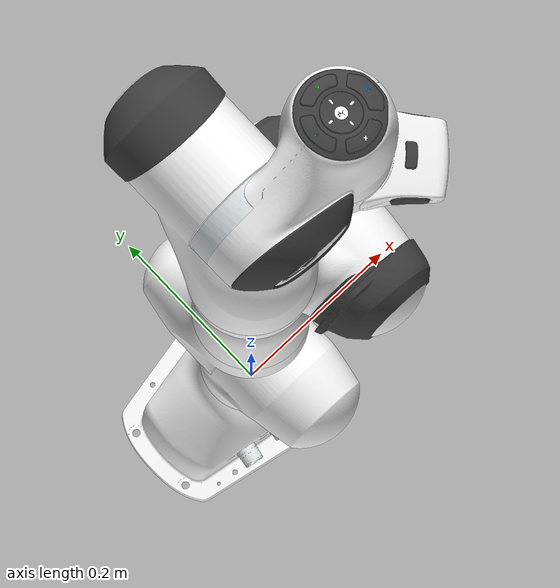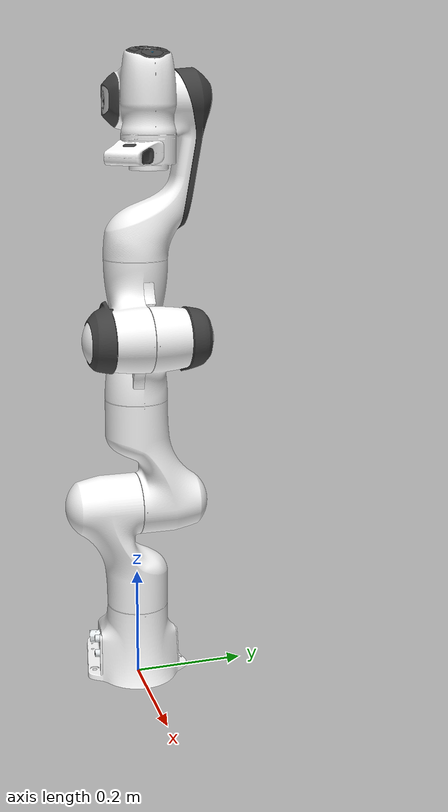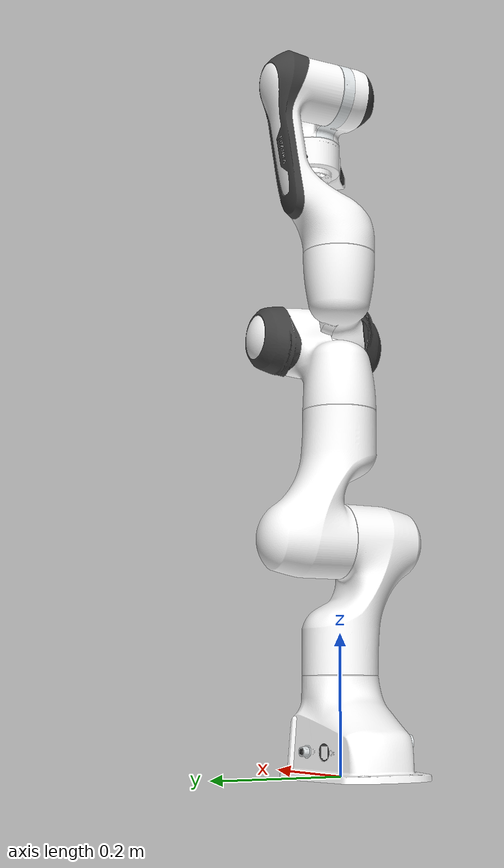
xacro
<?xml version="1.0" encoding="utf-8"?>
<robot xmlns:xacro="http://www.ros.org/wiki/xacro" name="panda">

  <xacro:include filename="$(find franka_hardware)/ros2_control/franka_arm.ros2_control.xacro"/>

  <xacro:arg name="arm_id" default="panda"/>
  <xacro:arg name="hand" default="false"/>
  <xacro:arg name="tcp_xyz" default="0 0 0.1034"/>
  <xacro:arg name="tcp_rpy" default="0 0 0"/>

  <xacro:arg name="gazebo" default="false"/>
  <xacro:arg name="parent" default="world"/>
  <xacro:arg name="xyz" default="0 0 0"/>
  <xacro:arg name="rpy" default="0 0 0"/>

  <xacro:arg name="include_ros2_control" default="false"/>
  <xacro:arg name="robot_ip" default=""/>
  <xacro:arg name="use_fake_hardware" default="false"/>
  <xacro:arg name="fake_sensor_commands" default="false"/>
  <xacro:arg name="gazebo_effort" default="false"/>
  <xacro:arg name="is_async" default="false"/>
  <xacro:arg name="thread_priority" default="50"/>
  <xacro:arg name="initial_joint1" default="0.0"/>
  <xacro:arg name="initial_joint2" default="0.0"/>
  <xacro:arg name="initial_joint3" default="0.0"/>
  <xacro:arg name="initial_joint4" default="${-pi/2}"/>
  <xacro:arg name="initial_joint5" default="0.0"/>
  <xacro:arg name="initial_joint6" default="${pi/2}"/>
  <xacro:arg name="initial_joint7" default="${-pi/4}"/>

  <xacro:property name="arm_id" value="$(arg arm_id)"/>
  <xacro:property name="mesh_pkg" value="package://franka_emika_panda/assets"/>
  <xacro:property name="joint_limits" value="${xacro.load_yaml('$(find franka_emika_panda)/joint_limits.yaml')}"/>

  <material name="panda_white">
    <color rgba="1 1 1 1"/>
  </material>
  <material name="panda_off_white">
    <color rgba="0.901961 0.921569 0.929412 1"/>
  </material>
  <material name="panda_black">
    <color rgba="0.25 0.25 0.25 1"/>
  </material>
  <material name="panda_green">
    <color rgba="0 1 0 1"/>
  </material>
  <material name="panda_light_blue">
    <color rgba="0.039216 0.541176 0.780392 1"/>
  </material>

  <xacro:macro name="mesh_visual" params="mesh material:=panda_white">
    <visual>
      <geometry>
        <mesh filename="${mesh_pkg}/${mesh}"/>
      </geometry>
      <material name="${material}"/>
    </visual>
  </xacro:macro>

  <xacro:macro name="mesh_collision" params="mesh">
    <collision>
      <geometry>
        <mesh filename="${mesh_pkg}/${mesh}"/>
      </geometry>
    </collision>
  </xacro:macro>

  <xacro:macro name="box_collision" params="xyz size">
    <collision>
      <origin xyz="${xyz}"/>
      <geometry>
        <box size="${size}"/>
      </geometry>
    </collision>
  </xacro:macro>

  <xacro:macro name="revolute_joint" params="name parent child xyz rpy">
    <joint name="${arm_id}_${name}" type="revolute">
      <origin xyz="${xyz}" rpy="${rpy}"/>
      <parent link="${arm_id}_${parent}"/>
      <child link="${arm_id}_${child}"/>
      <axis xyz="0 0 1"/>
      <limit
        lower="${joint_limits[name]['limit']['lower']}"
        upper="${joint_limits[name]['limit']['upper']}"
        effort="${joint_limits[name]['limit']['effort']}"
        velocity="${joint_limits[name]['limit']['velocity']}"/>
      <dynamics damping="1.0"/>
    </joint>
  </xacro:macro>

  <xacro:if value="$(arg gazebo)">
    <xacro:unless value="${'$(arg parent)' == ''}">
      <link name="$(arg parent)"/>
      <joint name="${arm_id}_base_joint" type="fixed">
        <origin xyz="$(arg xyz)" rpy="$(arg rpy)"/>
        <parent link="$(arg parent)"/>
        <child link="${arm_id}_link0"/>
      </joint>
    </xacro:unless>
  </xacro:if>

  <link name="${arm_id}_link0">
    <inertial>
      <origin xyz="-0.041018 -0.00014 0.049974"/>
      <mass value="0.629769"/>
      <inertia ixx="0.00315" iyy="0.00388" izz="0.004285" ixy="8.2904e-7" ixz="0.00015" iyz="8.2299e-6"/>
    </inertial>
    <xacro:mesh_visual mesh="link0_0.obj" material="panda_off_white"/>
    <xacro:mesh_visual mesh="link0_1.obj" material="panda_black"/>
    <xacro:mesh_visual mesh="link0_2.obj" material="panda_off_white"/>
    <xacro:mesh_visual mesh="link0_3.obj" material="panda_black"/>
    <xacro:mesh_visual mesh="link0_4.obj" material="panda_off_white"/>
    <xacro:mesh_visual mesh="link0_5.obj" material="panda_black"/>
    <xacro:mesh_visual mesh="link0_7.obj"/>
    <xacro:mesh_visual mesh="link0_8.obj"/>
    <xacro:mesh_visual mesh="link0_9.obj" material="panda_black"/>
    <xacro:mesh_visual mesh="link0_10.obj" material="panda_off_white"/>
    <xacro:mesh_visual mesh="link0_11.obj"/>
  </link>

  <link name="${arm_id}_link1">
    <inertial>
      <origin xyz="0.003875 0.002081 -0.04762"/>
      <mass value="4.970684"/>
      <inertia ixx="0.70337" iyy="0.70661" izz="0.009117" ixy="-0.000139" ixz="0.006772" iyz="0.019169"/>
    </inertial>
    <xacro:mesh_visual mesh="link1.obj"/>
  </link>
  <xacro:revolute_joint name="joint1" parent="link0" child="link1" xyz="0 0 0.333" rpy="0 0 0"/>

  <link name="${arm_id}_link2">
    <inertial>
      <origin xyz="-0.003141 -0.02872 0.003495"/>
      <mass value="0.646926"/>
      <inertia ixx="0.007962" iyy="0.02811" izz="0.025995" ixy="-0.003925" ixz="0.010254" iyz="0.000704"/>
    </inertial>
    <xacro:mesh_visual mesh="link2.obj"/>
  </link>
  <xacro:revolute_joint name="joint2" parent="link1" child="link2" xyz="0 0 0" rpy="-${pi/2} 0 0"/>

  <link name="${arm_id}_link3">
    <inertial>
      <origin xyz="0.027518 0.039252 -0.066502"/>
      <mass value="3.228604"/>
      <inertia ixx="0.037242" iyy="0.036155" izz="0.01083" ixy="-0.004761" ixz="-0.011396" iyz="-0.012805"/>
    </inertial>
    <xacro:mesh_visual mesh="link3_0.obj"/>
    <xacro:mesh_visual mesh="link3_1.obj"/>
    <xacro:mesh_visual mesh="link3_2.obj"/>
    <xacro:mesh_visual mesh="link3_3.obj" material="panda_black"/>
  </link>
  <xacro:revolute_joint name="joint3" parent="link2" child="link3" xyz="0 -0.316 0" rpy="${pi/2} 0 0"/>

  <link name="${arm_id}_link4">
    <inertial>
      <origin xyz="-0.05317 0.104419 0.027454"/>
      <mass value="3.587895"/>
      <inertia ixx="0.025853" iyy="0.019552" izz="0.028323" ixy="0.007796" ixz="-0.001332" iyz="0.008641"/>
    </inertial>
    <xacro:mesh_visual mesh="link4_0.obj"/>
    <xacro:mesh_visual mesh="link4_1.obj"/>
    <xacro:mesh_visual mesh="link4_2.obj" material="panda_black"/>
    <xacro:mesh_visual mesh="link4_3.obj"/>
  </link>
  <xacro:revolute_joint name="joint4" parent="link3" child="link4" xyz="0.0825 0 0" rpy="${pi/2} 0 0"/>

  <link name="${arm_id}_link5">
    <inertial>
      <origin xyz="-0.011953 0.041065 -0.038437"/>
      <mass value="1.225946"/>
      <inertia ixx="0.035549" iyy="0.029474" izz="0.008627" ixy="-0.002117" ixz="-0.004037" iyz="0.000229"/>
    </inertial>
    <xacro:mesh_visual mesh="link5_0.obj" material="panda_black"/>
    <xacro:mesh_visual mesh="link5_1.obj"/>
    <xacro:mesh_visual mesh="link5_2.obj"/>
  </link>
  <xacro:revolute_joint name="joint5" parent="link4" child="link5" xyz="-0.0825 0.384 0" rpy="-${pi/2} 0 0"/>

  <link name="${arm_id}_link6">
    <inertial>
      <origin xyz="0.060149 -0.014117 -0.010517"/>
      <mass value="1.666555"/>
      <inertia ixx="0.001964" iyy="0.004354" izz="0.005433" ixy="0.000109" ixz="-0.001158" iyz="0.000341"/>
    </inertial>
    <xacro:mesh_visual mesh="link6_0.obj" material="panda_off_white"/>
    <xacro:mesh_visual mesh="link6_1.obj"/>
    <xacro:mesh_visual mesh="link6_2.obj" material="panda_black"/>
    <xacro:mesh_visual mesh="link6_3.obj"/>
    <xacro:mesh_visual mesh="link6_4.obj"/>
    <xacro:mesh_visual mesh="link6_5.obj"/>
    <xacro:mesh_visual mesh="link6_6.obj"/>
    <xacro:mesh_visual mesh="link6_7.obj" material="panda_light_blue"/>
    <xacro:mesh_visual mesh="link6_8.obj" material="panda_light_blue"/>
    <xacro:mesh_visual mesh="link6_9.obj" material="panda_black"/>
    <xacro:mesh_visual mesh="link6_10.obj" material="panda_black"/>
    <xacro:mesh_visual mesh="link6_11.obj"/>
    <xacro:mesh_visual mesh="link6_12.obj" material="panda_green"/>
    <xacro:mesh_visual mesh="link6_13.obj"/>
    <xacro:mesh_visual mesh="link6_14.obj" material="panda_black"/>
    <xacro:mesh_visual mesh="link6_15.obj" material="panda_black"/>
    <xacro:mesh_visual mesh="link6_16.obj"/>
  </link>
  <xacro:revolute_joint name="joint6" parent="link5" child="link6" xyz="0 0 0" rpy="${pi/2} 0 0"/>

  <link name="${arm_id}_link7">
    <inertial>
      <origin xyz="0.010517 -0.004252 0.061597"/>
      <mass value="0.735522"/>
      <inertia ixx="0.012516" iyy="0.010027" izz="0.004815" ixy="-0.000428" ixz="-0.001196" iyz="-0.000741"/>
    </inertial>
    <xacro:mesh_visual mesh="link7_0.obj"/>
    <xacro:mesh_visual mesh="link7_1.obj" material="panda_black"/>
    <xacro:mesh_visual mesh="link7_2.obj" material="panda_black"/>
    <xacro:mesh_visual mesh="link7_3.obj" material="panda_black"/>
    <xacro:mesh_visual mesh="link7_4.obj" material="panda_black"/>
    <xacro:mesh_visual mesh="link7_5.obj" material="panda_black"/>
    <xacro:mesh_visual mesh="link7_6.obj" material="panda_black"/>
    <xacro:mesh_visual mesh="link7_7.obj"/>
  </link>
  <xacro:revolute_joint name="joint7" parent="link6" child="link7" xyz="0.088 0 0" rpy="${pi/2} 0 0"/>

  <link name="${arm_id}_link8"/>
  <joint name="${arm_id}_joint8" type="fixed">
    <origin xyz="0 0 0.107" rpy="0 0 0"/>
    <parent link="${arm_id}_link7"/>
    <child link="${arm_id}_link8"/>
  </joint>

  <xacro:if value="$(arg hand)">
    <link name="${arm_id}_hand">
      <inertial>
        <origin xyz="-0.01 0 0.03"/>
        <mass value="0.73"/>
        <inertia ixx="0.001" iyy="0.0025" izz="0.0017" ixy="0" ixz="0" iyz="0"/>
      </inertial>
      <xacro:mesh_visual mesh="hand_0.obj" material="panda_off_white"/>
      <xacro:mesh_visual mesh="hand_1.obj" material="panda_black"/>
      <xacro:mesh_visual mesh="hand_2.obj" material="panda_black"/>
      <xacro:mesh_visual mesh="hand_3.obj"/>
      <xacro:mesh_visual mesh="hand_4.obj" material="panda_off_white"/>
      <xacro:box_collision xyz="0 0 0.04" size="0.12 0.08 0.08"/>
    </link>
    <joint name="${arm_id}_hand_joint" type="fixed">
      <origin xyz="0 0 0" rpy="0 0 -${pi/4}"/>
      <parent link="${arm_id}_link8"/>
      <child link="${arm_id}_hand"/>
    </joint>

    <link name="${arm_id}_leftfinger">
      <inertial>
        <mass value="0.015"/>
        <inertia ixx="2.375e-6" iyy="2.375e-6" izz="7.5e-7" ixy="0" ixz="0" iyz="0"/>
      </inertial>
      <xacro:mesh_visual mesh="finger_0.obj" material="panda_off_white"/>
      <xacro:mesh_visual mesh="finger_1.obj" material="panda_black"/>
      <xacro:box_collision xyz="0 0.0055 0.0445" size="0.017 0.008 0.017"/>
    </link>
    <joint name="${arm_id}_finger_joint1" type="prismatic">
      <origin xyz="0 0 0.0584" rpy="0 0 0"/>
      <parent link="${arm_id}_hand"/>
      <child link="${arm_id}_leftfinger"/>
      <axis xyz="0 1 0"/>
      <limit lower="0" upper="0.04" effort="100" velocity="0.2"/>
    </joint>

    <link name="${arm_id}_rightfinger">
      <inertial>
        <mass value="0.015"/>
        <inertia ixx="2.375e-6" iyy="2.375e-6" izz="7.5e-7" ixy="0" ixz="0" iyz="0"/>
      </inertial>
      <xacro:mesh_visual mesh="finger_0.obj" material="panda_off_white"/>
      <xacro:mesh_visual mesh="finger_1.obj" material="panda_black"/>
      <xacro:box_collision xyz="0 0.0055 0.0445" size="0.017 0.008 0.017"/>
    </link>
    <joint name="${arm_id}_finger_joint2" type="fixed">
      <origin xyz="0 0 0.0584" rpy="0 0 ${pi}"/>
      <parent link="${arm_id}_hand"/>
      <child link="${arm_id}_rightfinger"/>
    </joint>

    <link name="${arm_id}_hand_tcp"/>
    <joint name="${arm_id}_hand_tcp_joint" type="fixed">
      <origin xyz="$(arg tcp_xyz)" rpy="$(arg tcp_rpy)"/>
      <parent link="${arm_id}_hand"/>
      <child link="${arm_id}_hand_tcp"/>
    </joint>
  </xacro:if>

  <xacro:if value="$(arg include_ros2_control)">
    <xacro:franka_arm_ros2_control
        robot_type="$(arg arm_id)"
        robot_ip="$(arg robot_ip)"
        use_fake_hardware="$(arg use_fake_hardware)"
        fake_sensor_commands="$(arg fake_sensor_commands)"
        gazebo="$(arg gazebo)"
        hand="$(arg hand)"
        gazebo_effort="$(arg gazebo_effort)"
        arm_prefix=""
        is_async="$(arg is_async)"
        thread_priority="$(arg thread_priority)"
        initial_joint1="$(arg initial_joint1)"
        initial_joint2="$(arg initial_joint2)"
        initial_joint3="$(arg initial_joint3)"
        initial_joint4="$(arg initial_joint4)"
        initial_joint5="$(arg initial_joint5)"
        initial_joint6="$(arg initial_joint6)"
        initial_joint7="$(arg initial_joint7)"/>
  </xacro:if>

</robot>
